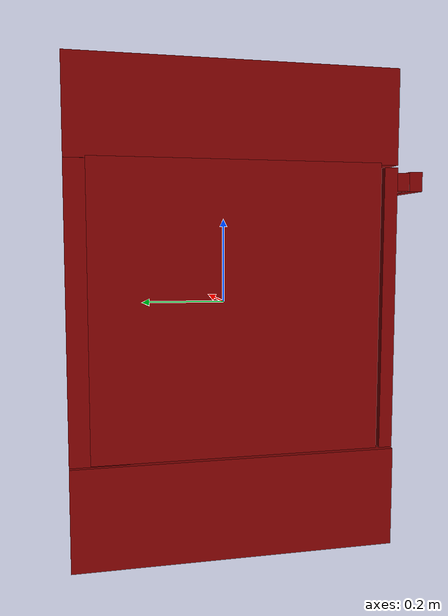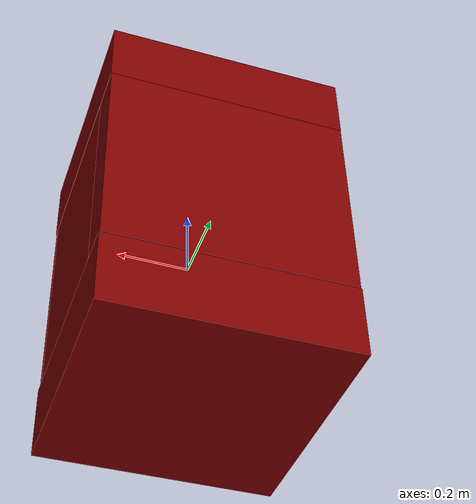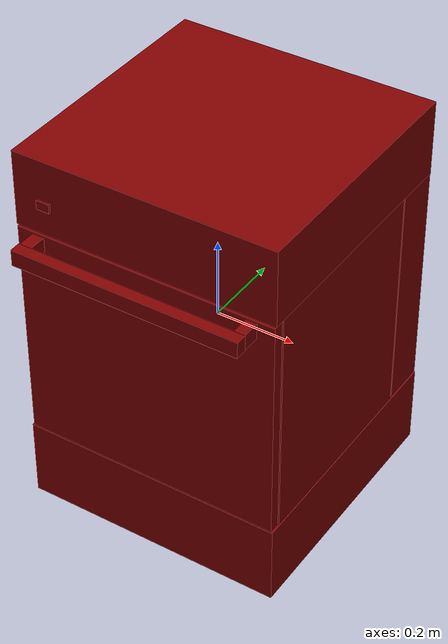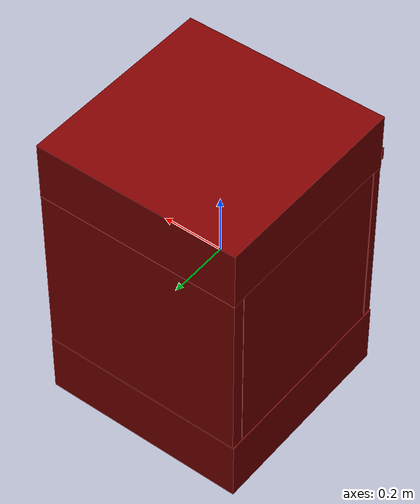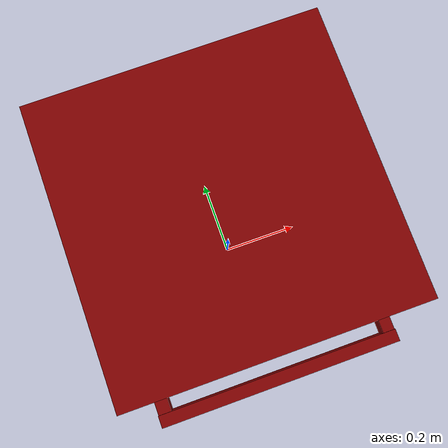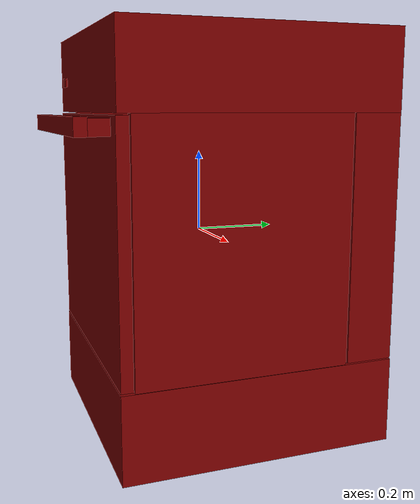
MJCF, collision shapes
<mujoco model="model">
  <compiler angle="radian"/>
  <asset>
    <mesh file="visuals/Body001.obj" name="Body001_vis"/>
    <mesh file="visuals/Button001.obj" name="Button001_vis"/>
    <mesh file="visuals/Container001.obj" name="Container001_vis"/>
    <mesh file="visuals/Container002.obj" name="Container002_vis"/>
    <mesh file="visuals/Door001.obj" name="Door001_vis"/>
    <mesh file="visuals/Handle001.obj" name="Handle001_vis"/>
    <texture file="visuals/T_BC001.png" name="Body001_material" type="2d"/>
    <material name="Body001_material" rgba="1 1 1 1.0" texture="Body001_material" shininess="1" specular="1"/>
    <texture file="visuals/T_BC001.png" name="Button001_material" type="2d"/>
    <material name="Button001_material" rgba="1 1 1 1.0" texture="Button001_material" shininess="1" specular="1"/>
    <texture file="visuals/T_BC001.png" name="Container001_material" type="2d"/>
    <material name="Container001_material" rgba="1 1 1 1.0" texture="Container001_material" shininess="1" specular="1"/>
    <texture file="visuals/T_BC001.png" name="Container002_material" type="2d"/>
    <material name="Container002_material" rgba="1 1 1 1.0" texture="Container002_material" shininess="1" specular="1"/>
    <texture file="visuals/T_BC001.png" name="Door001_material" type="2d"/>
    <material name="Door001_material" rgba="1 1 1 1.0" texture="Door001_material" shininess="1" specular="1"/>
    <texture file="visuals/T_BC001.png" name="Handle001_material" type="2d"/>
    <material name="Handle001_material" rgba="1 1 1 1.0" texture="Handle001_material" shininess="1" specular="1"/>
  </asset>
  <default>
    <default class="visual">
      <geom conaffinity="0" contype="0" group="1" type="mesh"/>
    </default>
    <default class="collision">
      <geom group="0" rgba="0.5 0 0 0.5"/>
    </default>
    <default class="spawn">
      <geom group="0" rgba="1 1 1 0.5" contype="0" conaffinity="0"/>
      <site group="0" rgba="1 1 1 0.5"/>
    </default>
    <default class="region">
      <geom group="1" conaffinity="0" contype="0" rgba="0 1 0 0"/>
    </default>
  </default>
  <worldbody>
    <body>
      <body name="object">
        <geom mesh="Body001_vis" type="mesh" solimp="0.998 0.998 0.001" solref="0.001 1" density="100" friction="0.95 0.3 0.1" class="visual" material="Body001_material"/>
        <geom class="collision" type="box" pos="-0.320134 0.036232 0.010804" size="0.012114939279854298 0.29174354672431946 0.29274818301200867" quat="1.0 0.0 0.0 0.0"/>
        <geom class="collision" type="box" pos="0.320281 -0.006769 0.008377" size="0.011156880296766758 0.25465190410614014 0.2944124937057495" quat="1.0 0.0 0.0 0.0"/>
        <geom class="collision" type="box" pos="0.000110 0.038823 0.394401" size="0.3323088586330414 0.32938113808631897 0.09508378803730011" quat="1.0 0.0 0.0 0.0"/>
        <geom class="collision" type="box" pos="0.000039 0.037621 -0.389276" size="0.33354267477989197 0.33075353503227234 0.1033061221241951" quat="1.0 0.0 0.0 0.0"/>
        <geom class="collision" type="box" pos="0.000285 0.310262 0.008342" size="0.33119404315948486 0.058056801557540894 0.2918362021446228" quat="1.0 0.0 0.0 0.0"/>
        <body name="Button001">
          <joint axis="0.0 1.0 0.0" pos="-0.252831 -0.293053 0.376465" limited="true" name="Button001_joint" range="0.0 0.004" type="slide" damping="1" frictionloss="1" armature=".01" stiffness="0.05"/>
          <geom mesh="Button001_vis" type="mesh" solimp="0.998 0.998 0.001" solref="0.001 1" density="100" friction="0.95 0.3 0.1" class="visual" material="Button001_material"/>
          <geom class="collision" type="box" pos="-0.252866 -0.293988 0.376553" size="0.01696334406733513 0.0026795221492648125 0.01153666153550148" quat="1.0 0.0 0.0 0.0"/>
        </body>
        <body name="Container001">
          <joint axis="0.0 -1.0 0.0" pos="0.000136 -0.000163 0.127939" limited="true" name="Container001_joint" range="0.0 0.13" type="slide" damping="1" frictionloss="1" armature=".01" stiffness="0.05"/>
          <geom mesh="Container001_vis" type="mesh" solimp="0.998 0.998 0.001" solref="0.001 1" density="100" friction="0.95 0.3 0.1" class="visual" material="Container001_material"/>
          <geom class="collision" type="box" pos="0.007631 0.242523 0.133468" size="0.29884931445121765 0.009070084430277348 0.05426874756813049" quat="1.0 0.0 0.0 0.0"/>
          <geom class="collision" type="box" pos="0.001528 -0.010683 0.073694" size="0.2927471995353699 0.24595850706100464 0.009566865861415863" quat="1.0 0.0 0.0 0.0"/>
          <geom class="collision" type="box" pos="-0.298976 0.000269 0.128841" size="0.24705632030963898 0.007493689656257629 0.050720565021038055" quat="0.7071067094802856 0.0 0.0 0.7071068286895752"/>
          <geom class="collision" type="box" pos="-0.001258 -0.242011 0.139326" size="0.29377201199531555 0.010061964392662048 0.04841029644012451" quat="1.0 0.0 0.0 0.0"/>
          <geom class="collision" type="box" pos="0.298903 -0.008724 0.130903" size="0.24254518747329712 0.007755940314382315 0.04865901172161102" quat="0.7071067094802856 0.0 0.0 0.7071068286895752"/>
        </body>
        <body name="Container002">
          <joint axis="0.0 -1.0 0.0" pos="0.000136 -0.000163 -0.137966" limited="true" name="Container002_joint" range="0.0 0.1" type="slide" damping="1" frictionloss="1" armature=".01" stiffness="0.05"/>
          <geom mesh="Container002_vis" type="mesh" solimp="0.998 0.998 0.001" solref="0.001 1" density="100" friction="0.95 0.3 0.1" class="visual" material="Container002_material"/>
          <geom class="collision" type="box" pos="0.298903 -0.008724 -0.138312" size="0.24254518747329712 0.007755940314382315 0.04865901172161102" quat="0.7071067094802856 0.0 0.0 0.7071068286895752"/>
          <geom class="collision" type="box" pos="-0.298976 0.000269 -0.135143" size="0.24705632030963898 0.007493689656257629 0.050720565021038055" quat="0.7071067094802856 0.0 0.0 0.7071068286895752"/>
          <geom class="collision" type="box" pos="0.007631 0.242523 -0.132359" size="0.29884931445121765 0.009070084430277348 0.05426874756813049" quat="1.0 0.0 0.0 0.0"/>
          <geom class="collision" type="box" pos="-0.001258 -0.242011 -0.136436" size="0.29377201199531555 0.010061964392662048 0.04841029644012451" quat="1.0 0.0 0.0 0.0"/>
          <geom class="collision" type="box" pos="0.001528 -0.010683 -0.192379" size="0.2927471995353699 0.24595850706100464 0.009566865861415863" quat="1.0 0.0 0.0 0.0"/>
        </body>
        <body name="Door001">
          <joint axis="1.0 0.0 0.0" pos="-0.000274 -0.289268 -0.287976" limited="true" name="Door001_joint" range="0.0 0.5235987755982988" type="hinge" damping="1" frictionloss="1" armature=".01" stiffness="0.05"/>
          <geom mesh="Door001_vis" type="mesh" solimp="0.998 0.998 0.001" solref="0.001 1" density="100" friction="0.95 0.3 0.1" class="visual" material="Door001_material"/>
          <geom class="collision" type="box" pos="0.000046 -0.278061 0.006081" size="0.32965609431266785 0.014063283801078796 0.2890564799308777" quat="1.0 0.0 0.0 0.0"/>
          <body name="Handle001">
            <geom mesh="Handle001_vis" type="mesh" solimp="0.998 0.998 0.001" solref="0.001 1" density="100" friction="0.95 0.3 0.1" class="visual" material="Handle001_material"/>
            <geom class="collision" type="box" pos="-0.001291 -0.353571 0.271422" size="0.28864988684654236 0.014407921582460403 0.020323341712355614" quat="1.0 0.0 0.0 0.0"/>
            <geom class="collision" type="box" pos="0.272246 -0.321798 0.270539" size="0.03452816605567932 0.013897823169827461 0.018780503422021866" quat="0.7071067094802856 0.0 0.0 0.7071068286895752"/>
            <geom class="collision" type="box" pos="-0.273957 -0.321798 0.270539" size="0.03452816605567932 0.015166739001870155 0.018780503422021866" quat="0.7071067094802856 0.0 0.0 0.7071068286895752"/>
          </body>
        </body>
        <geom class="region" name="reg_main" type="box" pos="0.0 0.03751550000000001 0.0" size="0.329388 0.32953350000000003 0.488954"/>
        <geom class="region" name="reg_int" type="box" pos="-0.00022199999999999998 -0.004154500000000005 0.008095500000000005" size="0.304197 0.2557495 0.28969449999999997"/>
      </body>
    </body>
  </worldbody>
  <actuator>
    <motor name="Button001_joint_actuator" joint="Button001_joint" gear="0.5"/>
    <motor name="Container001_joint_actuator" joint="Container001_joint" gear="10"/>
    <motor name="Container002_joint_actuator" joint="Container002_joint" gear="10"/>
    <motor name="Door001_joint_actuator" joint="Door001_joint" gear="50"/>
  </actuator>
</mujoco>
